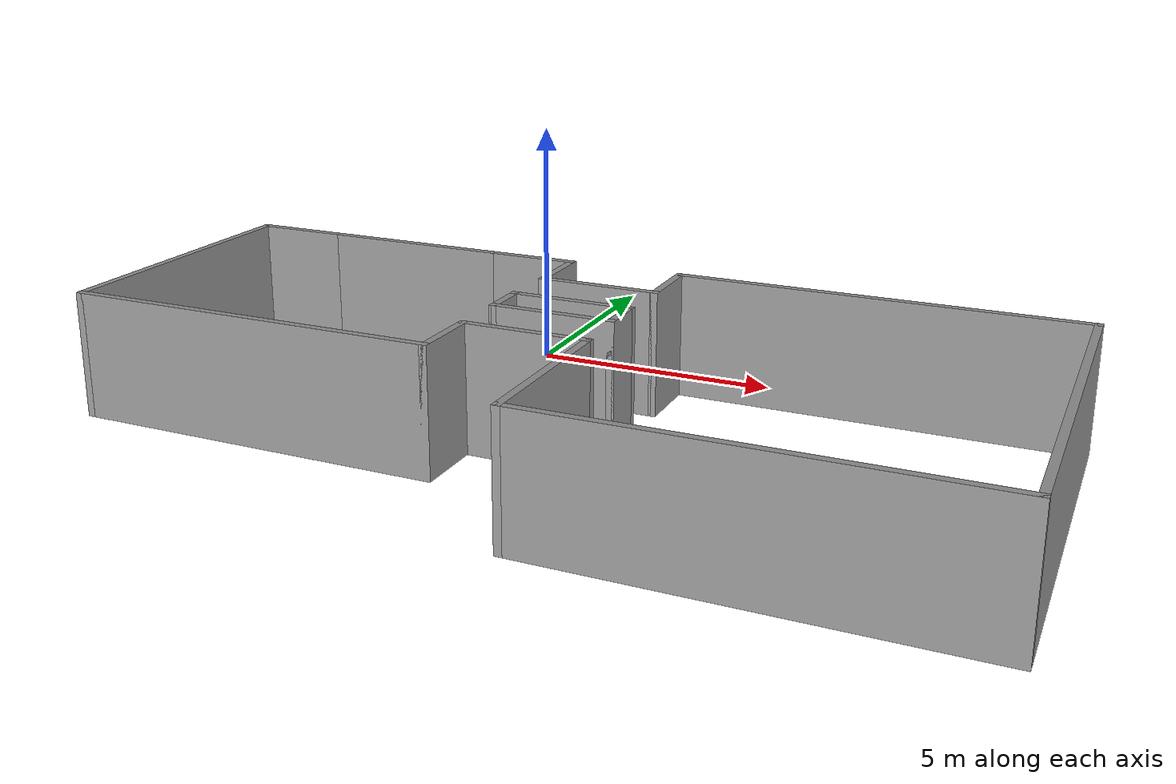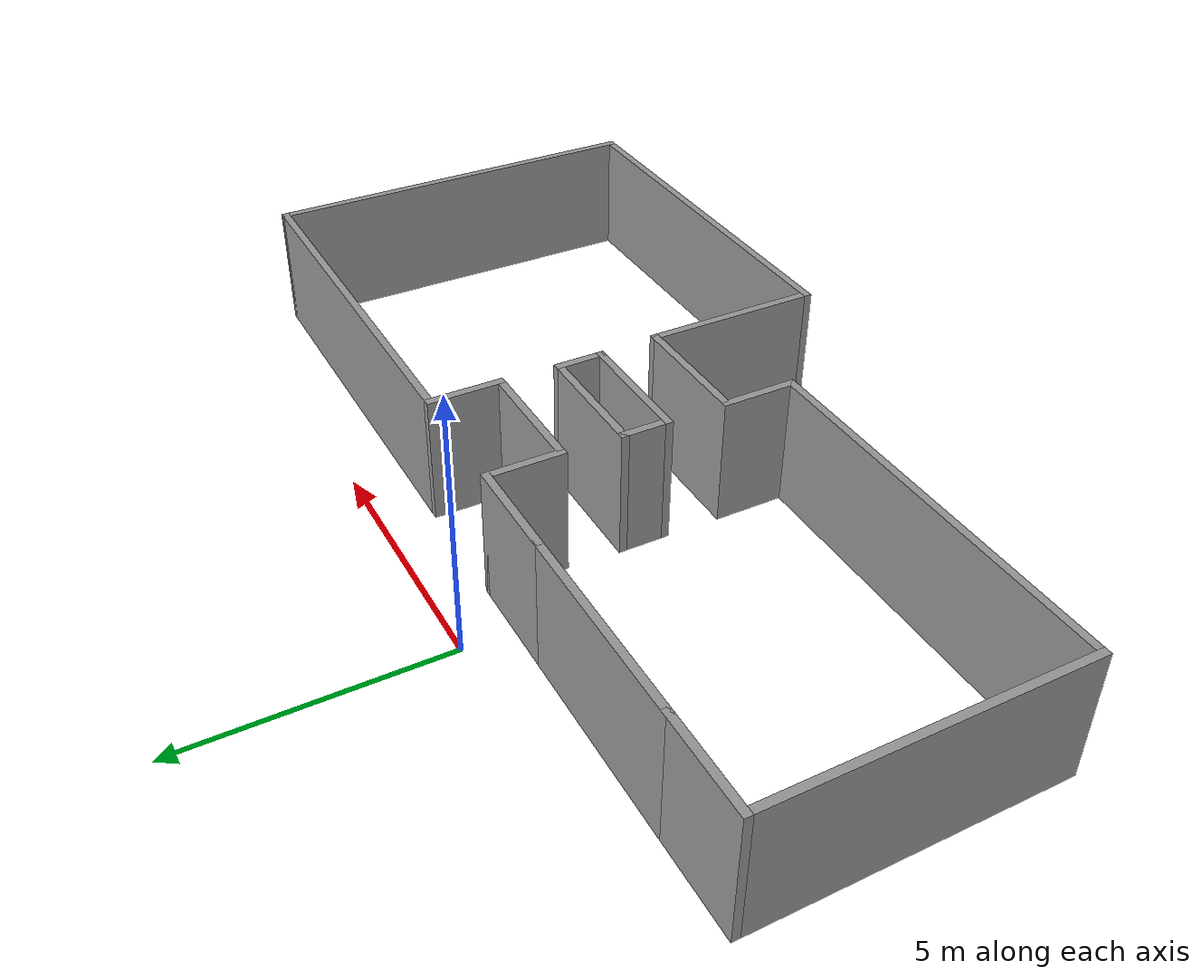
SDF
<?xml version='1.0'?>
<sdf version='1.7'>
  <model name='metro_terminal'>
    <pose>2.375 -4.4775 0 0 -0 0</pose>
    <link name='Wall_1'>
      <collision name='Wall_1_Collision'>
        <geometry>
          <box>
            <size>2 0.15 2.5</size>
          </box>
        </geometry>
        <pose>0 0 1.25 0 -0 0</pose>
      </collision>
      <visual name='Wall_1_Visual'>
        <pose>0 0 1.25 0 -0 0</pose>
        <geometry>
          <box>
            <size>2 0.15 2.5</size>
          </box>
        </geometry>
        <material>
          <script>
            <uri>file://media/materials/scripts/gazebo.material</uri>
            <name>Gazebo/Grey</name>
          </script>
          <ambient>1 1 1 1</ambient>
        </material>
        <meta>
          <layer>0</layer>
        </meta>
      </visual>
      <pose>-2.25 3.4475 0 0 -0 0</pose>
    </link>
    <link name='Wall_11'>
      <collision name='Wall_11_Collision'>
        <geometry>
          <box>
            <size>1.5 0.15 2.5</size>
          </box>
        </geometry>
        <pose>0 0 1.25 0 -0 0</pose>
      </collision>
      <visual name='Wall_11_Visual'>
        <pose>0 0 1.25 0 -0 0</pose>
        <geometry>
          <box>
            <size>1.5 0.15 2.5</size>
          </box>
        </geometry>
        <material>
          <script>
            <uri>file://media/materials/scripts/gazebo.material</uri>
            <name>Gazebo/Grey</name>
          </script>
          <ambient>1 1 1 1</ambient>
        </material>
        <meta>
          <layer>0</layer>
        </meta>
      </visual>
      <pose>-1.325 2.7725 0 0 -0 -1.5708</pose>
    </link>
    <link name='Wall_13'>
      <collision name='Wall_13_Collision'>
        <geometry>
          <box>
            <size>2.5 0.15 2.5</size>
          </box>
        </geometry>
        <pose>0 0 1.25 0 -0 0</pose>
      </collision>
      <visual name='Wall_13_Visual'>
        <pose>0 0 1.25 0 -0 0</pose>
        <geometry>
          <box>
            <size>2.5 0.15 2.5</size>
          </box>
        </geometry>
        <material>
          <script>
            <uri>file://media/materials/scripts/gazebo.material</uri>
            <name>Gazebo/Grey</name>
          </script>
          <ambient>1 1 1 1</ambient>
        </material>
        <meta>
          <layer>0</layer>
        </meta>
      </visual>
      <pose>-0.15 2.0975 0 0 -0 0</pose>
    </link>
    <link name='Wall_14'>
      <collision name='Wall_14_Collision'>
        <geometry>
          <box>
            <size>1.5 0.15 2.5</size>
          </box>
        </geometry>
        <pose>0 0 1.25 0 -0 0</pose>
      </collision>
      <visual name='Wall_14_Visual'>
        <pose>0 0 1.25 0 -0 0</pose>
        <geometry>
          <box>
            <size>1.5 0.15 2.5</size>
          </box>
        </geometry>
        <material>
          <script>
            <uri>file://media/materials/scripts/gazebo.material</uri>
            <name>Gazebo/Grey</name>
          </script>
          <ambient>1 1 1 1</ambient>
        </material>
        <meta>
          <layer>0</layer>
        </meta>
      </visual>
      <pose>1.025 2.7725 0 0 -0 1.5708</pose>
    </link>
    <link name='Wall_15'>
      <collision name='Wall_15_Collision'>
        <geometry>
          <box>
            <size>8 0.15 2.5</size>
          </box>
        </geometry>
        <pose>0 0 1.25 0 -0 0</pose>
      </collision>
      <visual name='Wall_15_Visual'>
        <pose>0 0 1.25 0 -0 0</pose>
        <geometry>
          <box>
            <size>8 0.15 2.5</size>
          </box>
        </geometry>
        <material>
          <script>
            <uri>file://media/materials/scripts/gazebo.material</uri>
            <name>Gazebo/Grey</name>
          </script>
          <ambient>1 1 1 1</ambient>
        </material>
        <meta>
          <layer>0</layer>
        </meta>
      </visual>
      <pose>4.95 3.4475 0 0 -0 0</pose>
    </link>
    <link name='Wall_18'>
      <collision name='Wall_18_Collision'>
        <geometry>
          <box>
            <size>8 0.15 2.5</size>
          </box>
        </geometry>
        <pose>0 0 1.25 0 -0 0</pose>
      </collision>
      <visual name='Wall_18_Visual'>
        <pose>0 0 1.25 0 -0 0</pose>
        <geometry>
          <box>
            <size>8 0.15 2.5</size>
          </box>
        </geometry>
        <material>
          <script>
            <uri>file://media/materials/scripts/gazebo.material</uri>
            <name>Gazebo/Grey</name>
          </script>
          <ambient>1 1 1 1</ambient>
        </material>
        <meta>
          <layer>0</layer>
        </meta>
      </visual>
      <pose>8.875 -0.4775 0 0 -0 -1.5708</pose>
    </link>
    <link name='Wall_19'>
      <collision name='Wall_19_Collision'>
        <geometry>
          <box>
            <size>8 0.15 2.5</size>
          </box>
        </geometry>
        <pose>0 0 1.25 0 -0 0</pose>
      </collision>
      <visual name='Wall_19_Visual'>
        <pose>0 0 1.25 0 -0 0</pose>
        <geometry>
          <box>
            <size>8 0.15 2.5</size>
          </box>
        </geometry>
        <material>
          <script>
            <uri>file://media/materials/scripts/gazebo.material</uri>
            <name>Gazebo/Grey</name>
          </script>
          <ambient>1 1 1 1</ambient>
        </material>
        <meta>
          <layer>0</layer>
        </meta>
      </visual>
      <pose>4.95 -4.4025 0 0 -0 3.14159</pose>
    </link>
    <link name='Wall_20'>
      <collision name='Wall_20_Collision'>
        <geometry>
          <box>
            <size>3.5 0.15 2.5</size>
          </box>
        </geometry>
        <pose>0 0 1.25 0 -0 0</pose>
      </collision>
      <visual name='Wall_20_Visual'>
        <pose>0 0 1.25 0 -0 0</pose>
        <geometry>
          <box>
            <size>3.5 0.15 2.5</size>
          </box>
        </geometry>
        <material>
          <script>
            <uri>file://media/materials/scripts/gazebo.material</uri>
            <name>Gazebo/Grey</name>
          </script>
          <ambient>1 1 1 1</ambient>
        </material>
        <meta>
          <layer>0</layer>
        </meta>
      </visual>
      <pose>1.025 -2.7275 0 0 -0 1.5708</pose>
    </link>
    <link name='Wall_21'>
      <collision name='Wall_21_Collision'>
        <geometry>
          <box>
            <size>2.56969 0.15 2.5</size>
          </box>
        </geometry>
        <pose>0 0 1.25 0 -0 0</pose>
      </collision>
      <visual name='Wall_21_Visual'>
        <pose>0 0 1.25 0 -0 0</pose>
        <geometry>
          <box>
            <size>2.56969 0.15 2.5</size>
          </box>
        </geometry>
        <material>
          <script>
            <uri>file://media/materials/scripts/gazebo.material</uri>
            <name>Gazebo/Grey</name>
          </script>
          <ambient>1 1 1 1</ambient>
        </material>
        <meta>
          <layer>0</layer>
        </meta>
      </visual>
      <pose>-0.184844 -1.0525 0 0 -0 3.14159</pose>
    </link>
    <link name='Wall_23'>
      <collision name='Wall_23_Collision'>
        <geometry>
          <box>
            <size>1 0.15 2.5</size>
          </box>
        </geometry>
        <pose>0 0 1.25 0 -0 0</pose>
      </collision>
      <visual name='Wall_23_Visual'>
        <pose>0 0 1.25 0 -0 0</pose>
        <geometry>
          <box>
            <size>1 0.15 2.5</size>
          </box>
        </geometry>
        <material>
          <script>
            <uri>file://media/materials/scripts/gazebo.material</uri>
            <name>Gazebo/Grey</name>
          </script>
          <ambient>1 1 1 1</ambient>
        </material>
        <meta>
          <layer>0</layer>
        </meta>
      </visual>
      <pose>-1.37653 0.539327 0 0 -0 -1.5708</pose>
    </link>
    <link name='Wall_24'>
      <collision name='Wall_24_Collision'>
        <geometry>
          <box>
            <size>2.5 0.15 2.5</size>
          </box>
        </geometry>
        <pose>0 0 1.25 0 -0 0</pose>
      </collision>
      <visual name='Wall_24_Visual'>
        <pose>0 0 1.25 0 -0 0</pose>
        <geometry>
          <box>
            <size>2.5 0.15 2.5</size>
          </box>
        </geometry>
        <material>
          <script>
            <uri>file://media/materials/scripts/gazebo.material</uri>
            <name>Gazebo/Grey</name>
          </script>
          <ambient>1 1 1 1</ambient>
        </material>
        <meta>
          <layer>0</layer>
        </meta>
      </visual>
      <pose>-0.201533 0.114327 0 0 -0 0</pose>
    </link>
    <link name='Wall_25'>
      <collision name='Wall_25_Collision'>
        <geometry>
          <box>
            <size>1 0.15 2.5</size>
          </box>
        </geometry>
        <pose>0 0 1.25 0 -0 0</pose>
      </collision>
      <visual name='Wall_25_Visual'>
        <pose>0 0 1.25 0 -0 0</pose>
        <geometry>
          <box>
            <size>1 0.15 2.5</size>
          </box>
        </geometry>
        <material>
          <script>
            <uri>file://media/materials/scripts/gazebo.material</uri>
            <name>Gazebo/Grey</name>
          </script>
          <ambient>1 1 1 1</ambient>
        </material>
        <meta>
          <layer>0</layer>
        </meta>
      </visual>
      <pose>0.973467 0.539327 0 0 -0 1.5708</pose>
    </link>
    <link name='Wall_26'>
      <collision name='Wall_26_Collision'>
        <geometry>
          <box>
            <size>2.5 0.15 2.5</size>
          </box>
        </geometry>
        <pose>0 0 1.25 0 -0 0</pose>
      </collision>
      <visual name='Wall_26_Visual'>
        <pose>0 0 1.25 0 -0 0</pose>
        <geometry>
          <box>
            <size>2.5 0.15 2.5</size>
          </box>
        </geometry>
        <material>
          <script>
            <uri>file://media/materials/scripts/gazebo.material</uri>
            <name>Gazebo/Grey</name>
          </script>
          <ambient>1 1 1 1</ambient>
        </material>
        <meta>
          <layer>0</layer>
        </meta>
      </visual>
      <pose>-0.201533 0.964327 0 0 -0 3.14159</pose>
    </link>
    <link name='Wall_3'>
      <collision name='Wall_3_Collision'>
        <geometry>
          <box>
            <size>4 0.15 2.5</size>
          </box>
        </geometry>
        <pose>0 0 1.25 0 -0 0</pose>
      </collision>
      <visual name='Wall_3_Visual'>
        <pose>0 0 1.25 0 -0 0</pose>
        <geometry>
          <box>
            <size>4 0.15 2.5</size>
          </box>
        </geometry>
        <material>
          <script>
            <uri>file://media/materials/scripts/gazebo.material</uri>
            <name>Gazebo/Grey</name>
          </script>
          <ambient>1 1 1 1</ambient>
        </material>
        <meta>
          <layer>0</layer>
        </meta>
      </visual>
      <pose>-5.1 3.4475 0 0 -0 3.14159</pose>
    </link>
    <link name='Wall_5'>
      <collision name='Wall_5_Collision'>
        <geometry>
          <box>
            <size>2 0.15 2.5</size>
          </box>
        </geometry>
        <pose>0 0 1.25 0 -0 0</pose>
      </collision>
      <visual name='Wall_5_Visual'>
        <pose>0 0 1.25 0 -0 0</pose>
        <geometry>
          <box>
            <size>2 0.15 2.5</size>
          </box>
        </geometry>
        <material>
          <script>
            <uri>file://media/materials/scripts/gazebo.material</uri>
            <name>Gazebo/Grey</name>
          </script>
          <ambient>1 1 1 1</ambient>
        </material>
        <meta>
          <layer>0</layer>
        </meta>
      </visual>
      <pose>-7.95 3.4475 0 0 -0 3.14159</pose>
    </link>
    <link name='Wall_7'>
      <collision name='Wall_7_Collision'>
        <geometry>
          <box>
            <size>6 0.15 2.5</size>
          </box>
        </geometry>
        <pose>0 0 1.25 0 -0 0</pose>
      </collision>
      <visual name='Wall_7_Visual'>
        <pose>0 0 1.25 0 -0 0</pose>
        <geometry>
          <box>
            <size>6 0.15 2.5</size>
          </box>
        </geometry>
        <material>
          <script>
            <uri>file://media/materials/scripts/gazebo.material</uri>
            <name>Gazebo/Grey</name>
          </script>
          <ambient>1 1 1 1</ambient>
        </material>
        <meta>
          <layer>0</layer>
        </meta>
      </visual>
      <pose>-8.875 0.5225 0 0 -0 -1.5708</pose>
    </link>
    <link name='Wall_8'>
      <collision name='Wall_8_Collision'>
        <geometry>
          <box>
            <size>7.63031 0.15 2.5</size>
          </box>
        </geometry>
        <pose>0 0 1.25 0 -0 0</pose>
      </collision>
      <visual name='Wall_8_Visual'>
        <pose>0 0 1.25 0 -0 0</pose>
        <geometry>
          <box>
            <size>7.63031 0.15 2.5</size>
          </box>
        </geometry>
        <material>
          <script>
            <uri>file://media/materials/scripts/gazebo.material</uri>
            <name>Gazebo/Grey</name>
          </script>
          <ambient>1 1 1 1</ambient>
        </material>
        <meta>
          <layer>0</layer>
        </meta>
      </visual>
      <pose>-5.13485 -2.4025 0 0 -0 0</pose>
    </link>
    <link name='Wall_9'>
      <collision name='Wall_9_Collision'>
        <geometry>
          <box>
            <size>1.5 0.15 2.5</size>
          </box>
        </geometry>
        <pose>0 0 1.25 0 -0 0</pose>
      </collision>
      <visual name='Wall_9_Visual'>
        <pose>0 0 1.25 0 -0 0</pose>
        <geometry>
          <box>
            <size>1.5 0.15 2.5</size>
          </box>
        </geometry>
        <material>
          <script>
            <uri>file://media/materials/scripts/gazebo.material</uri>
            <name>Gazebo/Grey</name>
          </script>
          <ambient>1 1 1 1</ambient>
        </material>
        <meta>
          <layer>0</layer>
        </meta>
      </visual>
      <pose>-1.39469 -1.7275 0 0 -0 1.5708</pose>
    </link>
    <static>1</static>
  </model>
</sdf>
